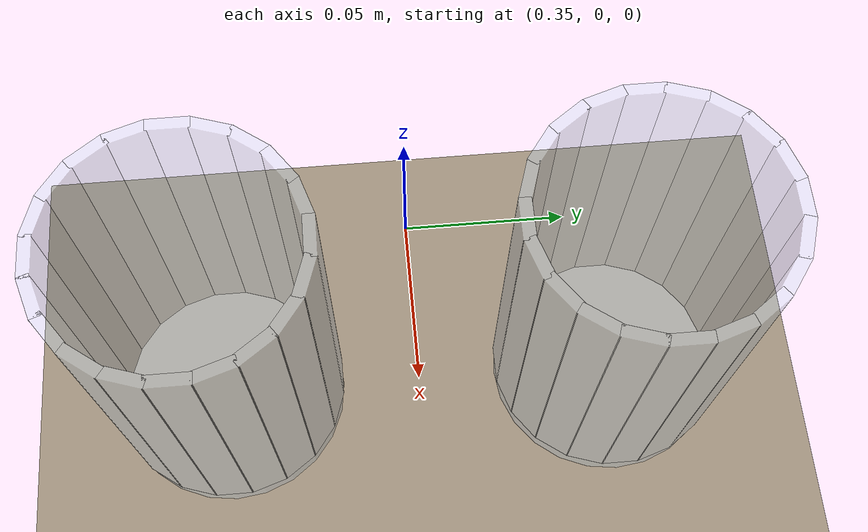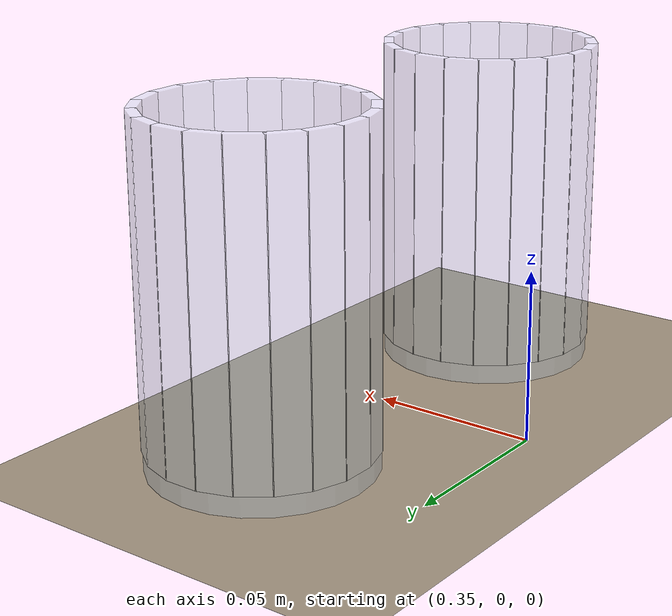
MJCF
<mujoco model="glasses_table">
  <compiler angle="radian"/>
  <include file="glasses.xml"/>

  <option timestep="0.0016666666666666668" integrator="implicitfast" cone="elliptic" impratio="10"/>

  <visual>
    <global offwidth="1280" offheight="960"/>
    <quality shadowsize="4096"/>
    <headlight ambient="0.40 0.40 0.40" diffuse="0.30 0.30 0.30" specular="0 0 0"/>
  </visual>

  <asset>
    <texture name="skybox" type="skybox" builtin="gradient"
             rgb1="0.36 0.43 0.52" rgb2="0.10 0.12 0.16" width="256" height="1536"/>
    <texture name="tabletop_tex" type="2d" builtin="checker"
             rgb1="0.66 0.60 0.52" rgb2="0.60 0.54 0.47" width="300" height="300"/>
    <material name="tabletop" texture="tabletop_tex" texrepeat="8 8" reflectance="0"
              specular="0.05" shininess="0.1"/>
  </asset>

  <worldbody>
    <!-- Soft and mostly diffuse: specular hotspots on the table are pixels a
         policy would learn to depend on. -->
    <light name="key"  pos="0.6 0.4 1.4"  dir="-0.4 -0.3 -1" diffuse="0.45 0.45 0.45"
           specular="0.05 0.05 0.05" castshadow="true"/>
    <light name="fill" pos="-0.3 -0.5 0.9" dir="0.3 0.5 -0.9" diffuse="0.25 0.25 0.25"
           specular="0 0 0" castshadow="false"/>
    <light name="overhead" pos="0 0 1" dir="0.35 0 -0.94" diffuse="0.7 0.7 0.7"
           specular="0.3 0.3 0.3" castshadow="true"/>

    <!-- The arm is attached at the origin and welded to the world, so it sits
         on the tabletop without colliding with it. -->
    <geom name="tabletop" type="plane" size="0.8 0.8 0.02" material="tabletop"
          friction="1.0 0.01 0.001"/>

    <!-- Overhead workspace view, centred on the glasses with the gripper's
         approach path in frame. Named to match the 'top' camera in the public
         YAM datasets (ABC-130k). -->
    <camera name="top" pos="0.22 0 0.72" xyaxes="0.000000 -1.000000 0.000000 0.965755 0.000000 0.259457" fovy="55"/>
  </worldbody>
</mujoco>

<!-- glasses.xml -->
<!-- GENERATED by scripts/build_yam_assets.py from teleop_sim/envs/yam_assets.py.
     Do not edit by hand: change the generator and re-run it. -->
<mujoco model="glasses">
  <worldbody>
    <body name="glass_left" pos="0.4 0.055 0">
      <freejoint name="glass_left_free"/>
      <geom name="glass_left_base" type="cylinder" size="0.0325 0.003" pos="0 0 0.003" density="2500" rgba="0.78 0.88 0.96 0.35" friction="1 0.01 0.001" solimp="0.95 0.99 0.001" solref="0.004 1"/>
      <geom name="glass_left_wall00" type="box" size="0.0015 0.005303 0.047" pos="0.031000 0.000000 0.053" quat="1.000000 0 0 0.000000" density="2500" rgba="0.78 0.88 0.96 0.35" friction="1 0.01 0.001" solimp="0.95 0.99 0.001" solref="0.004 1"/>
      <geom name="glass_left_wall01" type="box" size="0.0015 0.005303 0.047" pos="0.029483 0.009580 0.053" quat="0.987688 0 0 0.156434" density="2500" rgba="0.78 0.88 0.96 0.35" friction="1 0.01 0.001" solimp="0.95 0.99 0.001" solref="0.004 1"/>
      <geom name="glass_left_wall02" type="box" size="0.0015 0.005303 0.047" pos="0.025080 0.018221 0.053" quat="0.951057 0 0 0.309017" density="2500" rgba="0.78 0.88 0.96 0.35" friction="1 0.01 0.001" solimp="0.95 0.99 0.001" solref="0.004 1"/>
      <geom name="glass_left_wall03" type="box" size="0.0015 0.005303 0.047" pos="0.018221 0.025080 0.053" quat="0.891007 0 0 0.453990" density="2500" rgba="0.78 0.88 0.96 0.35" friction="1 0.01 0.001" solimp="0.95 0.99 0.001" solref="0.004 1"/>
      <geom name="glass_left_wall04" type="box" size="0.0015 0.005303 0.047" pos="0.009580 0.029483 0.053" quat="0.809017 0 0 0.587785" density="2500" rgba="0.78 0.88 0.96 0.35" friction="1 0.01 0.001" solimp="0.95 0.99 0.001" solref="0.004 1"/>
      <geom name="glass_left_wall05" type="box" size="0.0015 0.005303 0.047" pos="0.000000 0.031000 0.053" quat="0.707107 0 0 0.707107" density="2500" rgba="0.78 0.88 0.96 0.35" friction="1 0.01 0.001" solimp="0.95 0.99 0.001" solref="0.004 1"/>
      <geom name="glass_left_wall06" type="box" size="0.0015 0.005303 0.047" pos="-0.009580 0.029483 0.053" quat="0.587785 0 0 0.809017" density="2500" rgba="0.78 0.88 0.96 0.35" friction="1 0.01 0.001" solimp="0.95 0.99 0.001" solref="0.004 1"/>
      <geom name="glass_left_wall07" type="box" size="0.0015 0.005303 0.047" pos="-0.018221 0.025080 0.053" quat="0.453990 0 0 0.891007" density="2500" rgba="0.78 0.88 0.96 0.35" friction="1 0.01 0.001" solimp="0.95 0.99 0.001" solref="0.004 1"/>
      <geom name="glass_left_wall08" type="box" size="0.0015 0.005303 0.047" pos="-0.025080 0.018221 0.053" quat="0.309017 0 0 0.951057" density="2500" rgba="0.78 0.88 0.96 0.35" friction="1 0.01 0.001" solimp="0.95 0.99 0.001" solref="0.004 1"/>
      <geom name="glass_left_wall09" type="box" size="0.0015 0.005303 0.047" pos="-0.029483 0.009580 0.053" quat="0.156434 0 0 0.987688" density="2500" rgba="0.78 0.88 0.96 0.35" friction="1 0.01 0.001" solimp="0.95 0.99 0.001" solref="0.004 1"/>
      <geom name="glass_left_wall10" type="box" size="0.0015 0.005303 0.047" pos="-0.031000 0.000000 0.053" quat="0.000000 0 0 1.000000" density="2500" rgba="0.78 0.88 0.96 0.35" friction="1 0.01 0.001" solimp="0.95 0.99 0.001" solref="0.004 1"/>
      <geom name="glass_left_wall11" type="box" size="0.0015 0.005303 0.047" pos="-0.029483 -0.009580 0.053" quat="-0.156434 0 0 0.987688" density="2500" rgba="0.78 0.88 0.96 0.35" friction="1 0.01 0.001" solimp="0.95 0.99 0.001" solref="0.004 1"/>
      <geom name="glass_left_wall12" type="box" size="0.0015 0.005303 0.047" pos="-0.025080 -0.018221 0.053" quat="-0.309017 0 0 0.951057" density="2500" rgba="0.78 0.88 0.96 0.35" friction="1 0.01 0.001" solimp="0.95 0.99 0.001" solref="0.004 1"/>
      <geom name="glass_left_wall13" type="box" size="0.0015 0.005303 0.047" pos="-0.018221 -0.025080 0.053" quat="-0.453990 0 0 0.891007" density="2500" rgba="0.78 0.88 0.96 0.35" friction="1 0.01 0.001" solimp="0.95 0.99 0.001" solref="0.004 1"/>
      <geom name="glass_left_wall14" type="box" size="0.0015 0.005303 0.047" pos="-0.009580 -0.029483 0.053" quat="-0.587785 0 0 0.809017" density="2500" rgba="0.78 0.88 0.96 0.35" friction="1 0.01 0.001" solimp="0.95 0.99 0.001" solref="0.004 1"/>
      <geom name="glass_left_wall15" type="box" size="0.0015 0.005303 0.047" pos="-0.000000 -0.031000 0.053" quat="-0.707107 0 0 0.707107" density="2500" rgba="0.78 0.88 0.96 0.35" friction="1 0.01 0.001" solimp="0.95 0.99 0.001" solref="0.004 1"/>
      <geom name="glass_left_wall16" type="box" size="0.0015 0.005303 0.047" pos="0.009580 -0.029483 0.053" quat="-0.809017 0 0 0.587785" density="2500" rgba="0.78 0.88 0.96 0.35" friction="1 0.01 0.001" solimp="0.95 0.99 0.001" solref="0.004 1"/>
      <geom name="glass_left_wall17" type="box" size="0.0015 0.005303 0.047" pos="0.018221 -0.025080 0.053" quat="-0.891007 0 0 0.453990" density="2500" rgba="0.78 0.88 0.96 0.35" friction="1 0.01 0.001" solimp="0.95 0.99 0.001" solref="0.004 1"/>
      <geom name="glass_left_wall18" type="box" size="0.0015 0.005303 0.047" pos="0.025080 -0.018221 0.053" quat="-0.951057 0 0 0.309017" density="2500" rgba="0.78 0.88 0.96 0.35" friction="1 0.01 0.001" solimp="0.95 0.99 0.001" solref="0.004 1"/>
      <geom name="glass_left_wall19" type="box" size="0.0015 0.005303 0.047" pos="0.029483 -0.009580 0.053" quat="-0.987688 0 0 0.156434" density="2500" rgba="0.78 0.88 0.96 0.35" friction="1 0.01 0.001" solimp="0.95 0.99 0.001" solref="0.004 1"/>
    </body>
    <body name="glass_right" pos="0.4 -0.055 0">
      <freejoint name="glass_right_free"/>
      <geom name="glass_right_base" type="cylinder" size="0.0325 0.003" pos="0 0 0.003" density="2500" rgba="0.78 0.88 0.96 0.35" friction="1 0.01 0.001" solimp="0.95 0.99 0.001" solref="0.004 1"/>
      <geom name="glass_right_wall00" type="box" size="0.0015 0.005303 0.047" pos="0.031000 0.000000 0.053" quat="1.000000 0 0 0.000000" density="2500" rgba="0.78 0.88 0.96 0.35" friction="1 0.01 0.001" solimp="0.95 0.99 0.001" solref="0.004 1"/>
      <geom name="glass_right_wall01" type="box" size="0.0015 0.005303 0.047" pos="0.029483 0.009580 0.053" quat="0.987688 0 0 0.156434" density="2500" rgba="0.78 0.88 0.96 0.35" friction="1 0.01 0.001" solimp="0.95 0.99 0.001" solref="0.004 1"/>
      <geom name="glass_right_wall02" type="box" size="0.0015 0.005303 0.047" pos="0.025080 0.018221 0.053" quat="0.951057 0 0 0.309017" density="2500" rgba="0.78 0.88 0.96 0.35" friction="1 0.01 0.001" solimp="0.95 0.99 0.001" solref="0.004 1"/>
      <geom name="glass_right_wall03" type="box" size="0.0015 0.005303 0.047" pos="0.018221 0.025080 0.053" quat="0.891007 0 0 0.453990" density="2500" rgba="0.78 0.88 0.96 0.35" friction="1 0.01 0.001" solimp="0.95 0.99 0.001" solref="0.004 1"/>
      <geom name="glass_right_wall04" type="box" size="0.0015 0.005303 0.047" pos="0.009580 0.029483 0.053" quat="0.809017 0 0 0.587785" density="2500" rgba="0.78 0.88 0.96 0.35" friction="1 0.01 0.001" solimp="0.95 0.99 0.001" solref="0.004 1"/>
      <geom name="glass_right_wall05" type="box" size="0.0015 0.005303 0.047" pos="0.000000 0.031000 0.053" quat="0.707107 0 0 0.707107" density="2500" rgba="0.78 0.88 0.96 0.35" friction="1 0.01 0.001" solimp="0.95 0.99 0.001" solref="0.004 1"/>
      <geom name="glass_right_wall06" type="box" size="0.0015 0.005303 0.047" pos="-0.009580 0.029483 0.053" quat="0.587785 0 0 0.809017" density="2500" rgba="0.78 0.88 0.96 0.35" friction="1 0.01 0.001" solimp="0.95 0.99 0.001" solref="0.004 1"/>
      <geom name="glass_right_wall07" type="box" size="0.0015 0.005303 0.047" pos="-0.018221 0.025080 0.053" quat="0.453990 0 0 0.891007" density="2500" rgba="0.78 0.88 0.96 0.35" friction="1 0.01 0.001" solimp="0.95 0.99 0.001" solref="0.004 1"/>
      <geom name="glass_right_wall08" type="box" size="0.0015 0.005303 0.047" pos="-0.025080 0.018221 0.053" quat="0.309017 0 0 0.951057" density="2500" rgba="0.78 0.88 0.96 0.35" friction="1 0.01 0.001" solimp="0.95 0.99 0.001" solref="0.004 1"/>
      <geom name="glass_right_wall09" type="box" size="0.0015 0.005303 0.047" pos="-0.029483 0.009580 0.053" quat="0.156434 0 0 0.987688" density="2500" rgba="0.78 0.88 0.96 0.35" friction="1 0.01 0.001" solimp="0.95 0.99 0.001" solref="0.004 1"/>
      <geom name="glass_right_wall10" type="box" size="0.0015 0.005303 0.047" pos="-0.031000 0.000000 0.053" quat="0.000000 0 0 1.000000" density="2500" rgba="0.78 0.88 0.96 0.35" friction="1 0.01 0.001" solimp="0.95 0.99 0.001" solref="0.004 1"/>
      <geom name="glass_right_wall11" type="box" size="0.0015 0.005303 0.047" pos="-0.029483 -0.009580 0.053" quat="-0.156434 0 0 0.987688" density="2500" rgba="0.78 0.88 0.96 0.35" friction="1 0.01 0.001" solimp="0.95 0.99 0.001" solref="0.004 1"/>
      <geom name="glass_right_wall12" type="box" size="0.0015 0.005303 0.047" pos="-0.025080 -0.018221 0.053" quat="-0.309017 0 0 0.951057" density="2500" rgba="0.78 0.88 0.96 0.35" friction="1 0.01 0.001" solimp="0.95 0.99 0.001" solref="0.004 1"/>
      <geom name="glass_right_wall13" type="box" size="0.0015 0.005303 0.047" pos="-0.018221 -0.025080 0.053" quat="-0.453990 0 0 0.891007" density="2500" rgba="0.78 0.88 0.96 0.35" friction="1 0.01 0.001" solimp="0.95 0.99 0.001" solref="0.004 1"/>
      <geom name="glass_right_wall14" type="box" size="0.0015 0.005303 0.047" pos="-0.009580 -0.029483 0.053" quat="-0.587785 0 0 0.809017" density="2500" rgba="0.78 0.88 0.96 0.35" friction="1 0.01 0.001" solimp="0.95 0.99 0.001" solref="0.004 1"/>
      <geom name="glass_right_wall15" type="box" size="0.0015 0.005303 0.047" pos="-0.000000 -0.031000 0.053" quat="-0.707107 0 0 0.707107" density="2500" rgba="0.78 0.88 0.96 0.35" friction="1 0.01 0.001" solimp="0.95 0.99 0.001" solref="0.004 1"/>
      <geom name="glass_right_wall16" type="box" size="0.0015 0.005303 0.047" pos="0.009580 -0.029483 0.053" quat="-0.809017 0 0 0.587785" density="2500" rgba="0.78 0.88 0.96 0.35" friction="1 0.01 0.001" solimp="0.95 0.99 0.001" solref="0.004 1"/>
      <geom name="glass_right_wall17" type="box" size="0.0015 0.005303 0.047" pos="0.018221 -0.025080 0.053" quat="-0.891007 0 0 0.453990" density="2500" rgba="0.78 0.88 0.96 0.35" friction="1 0.01 0.001" solimp="0.95 0.99 0.001" solref="0.004 1"/>
      <geom name="glass_right_wall18" type="box" size="0.0015 0.005303 0.047" pos="0.025080 -0.018221 0.053" quat="-0.951057 0 0 0.309017" density="2500" rgba="0.78 0.88 0.96 0.35" friction="1 0.01 0.001" solimp="0.95 0.99 0.001" solref="0.004 1"/>
      <geom name="glass_right_wall19" type="box" size="0.0015 0.005303 0.047" pos="0.029483 -0.009580 0.053" quat="-0.987688 0 0 0.156434" density="2500" rgba="0.78 0.88 0.96 0.35" friction="1 0.01 0.001" solimp="0.95 0.99 0.001" solref="0.004 1"/>
    </body>
  </worldbody>
</mujoco>
